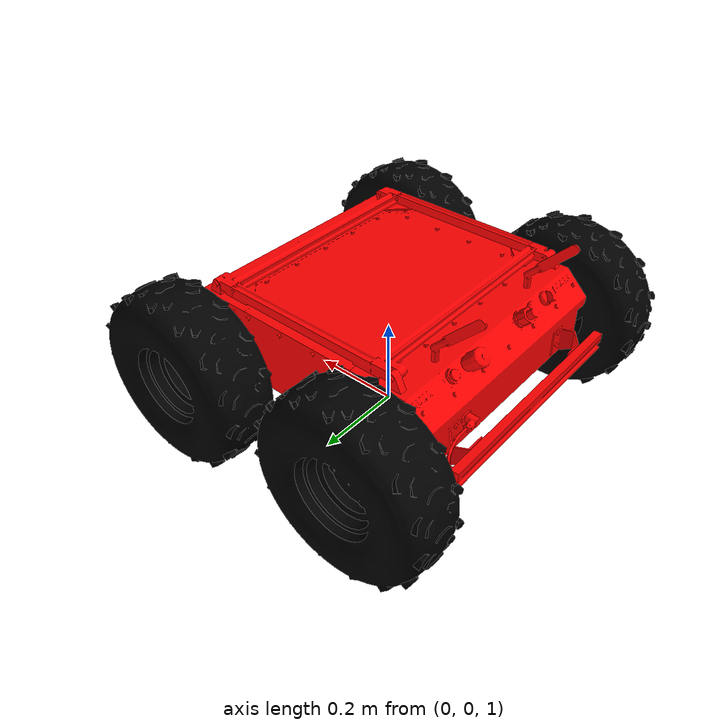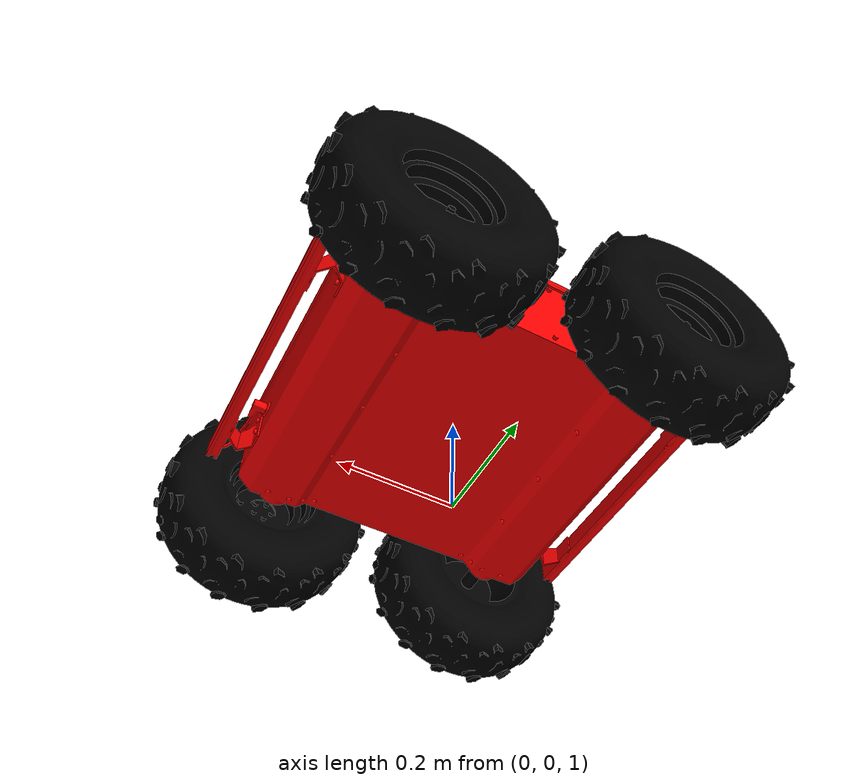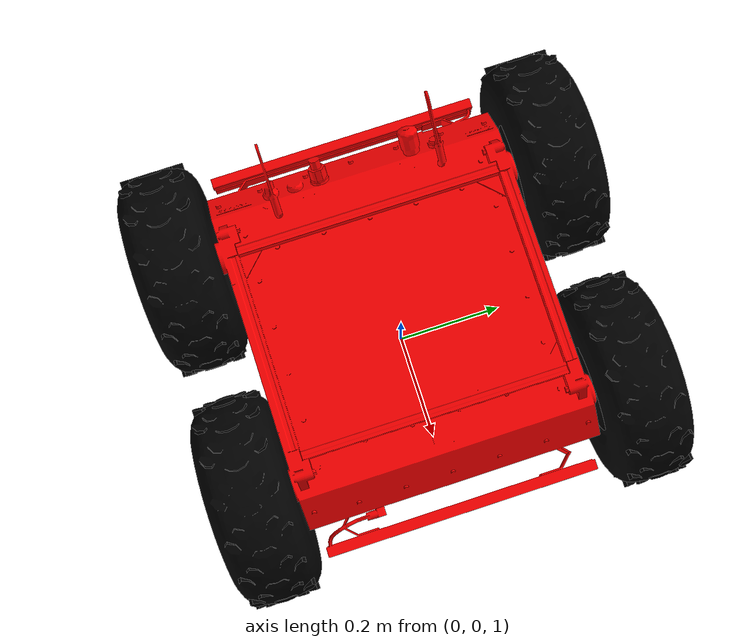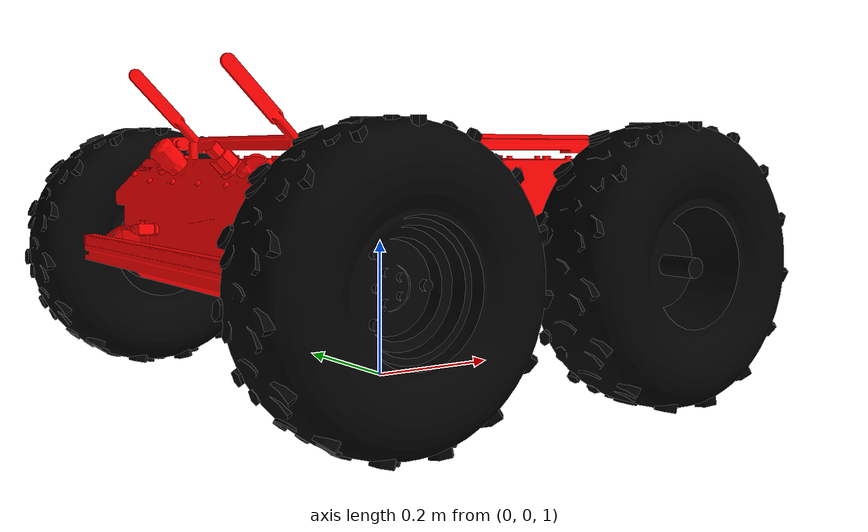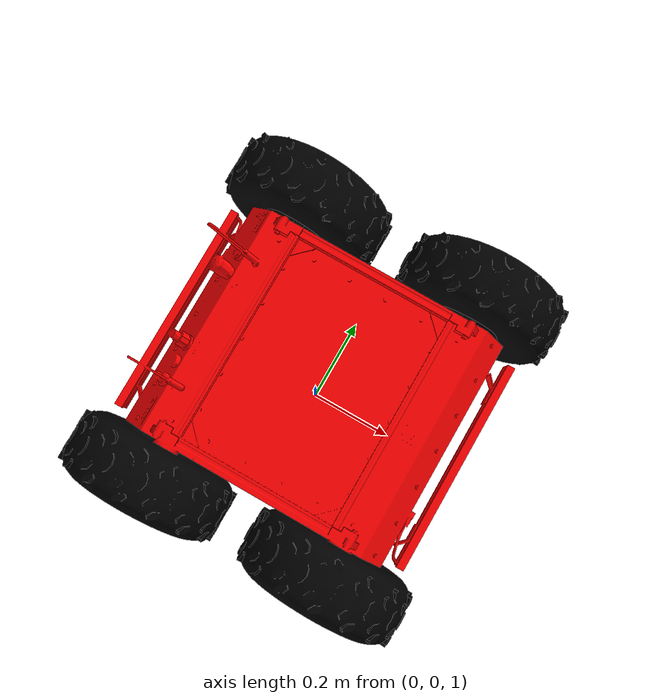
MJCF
<mujoco model="panther">
  <compiler angle="radian" meshdir="assets"/>
  <asset>
    <mesh name="body" file="body.stl"/>
    <mesh name="body_collision" file="body_collision.stl"/>
    <mesh name="fl_wheel" file="fl_wheel.stl"/>
    <mesh name="wheel_collision" file="wheel_collision.stl"/>
    <mesh name="fr_wheel" file="fr_wheel.stl"/>
    <mesh name="rl_wheel" file="rl_wheel.stl"/>
    <mesh name="rr_wheel" file="rr_wheel.stl"/>
  </asset>
  <worldbody>
    <body name="panther" pos= '0 0 1'>
      <geom rgba='1 0 0 1' pos="0 0 0.1825" type="mesh" contype="0" conaffinity="0" group="1" density="0" mesh="body"/>
      <geom rgba='0 0 0 0' pos="0 0 0.1825" type="mesh" mesh="body_collision"/>
      <body name="fl_wheel_link" pos="0.22 0.3485 0.1825">
        <inertial pos="0 0 0" quat="0.707107 0 0 0.707107" mass="3" diaginertia="0.03485 0.02251 0.02251"/>
        <joint name="fl_wheel_joint" pos="0 0 0" axis="0 1 0" actuatorfrcrange="-34.5 34.5" damping="0.01" frictionloss="0.01"/>
        <geom rgba='0 0 0 1' type="mesh" contype="0" conaffinity="0" group="1" density="0" mesh="fl_wheel"/>
        <geom rgba='0 0 0 0' type="mesh" mesh="wheel_collision"/>
      </body>
      <body name="fr_wheel_link" pos="0.22 -0.3485 0.1825">
        <inertial pos="0 0 0" quat="0.707107 0 0 0.707107" mass="3" diaginertia="0.03485 0.02251 0.02251"/>
        <joint name="fr_wheel_joint" pos="0 0 0" axis="0 1 0" actuatorfrcrange="-34.5 34.5" damping="0.01" frictionloss="0.01"/>
        <geom rgba='0 0 0 1' type="mesh" contype="0" conaffinity="0" group="1" density="0" mesh="fr_wheel"/>
        <geom rgba='0 0 0 0' type="mesh" mesh="wheel_collision"/>
      </body>
      <body name="rl_wheel_link" pos="-0.22 0.3485 0.1825">
        <inertial pos="0 0 0" quat="0.707107 0 0 0.707107" mass="3" diaginertia="0.03485 0.02251 0.02251"/>
        <joint name="rl_wheel_joint" pos="0 0 0" axis="0 1 0" actuatorfrcrange="-34.5 34.5" damping="0.01" frictionloss="0.01"/>
        <geom rgba='0 0 0 1' type="mesh" contype="0" conaffinity="0" group="1" density="0" mesh="rl_wheel"/>
        <geom rgba='0 0 0 0' type="mesh" mesh="wheel_collision"/>
      </body>
      <body name="rr_wheel_link" pos="-0.22 -0.3485 0.1825">
        <inertial pos="0 0 0" quat="0.707107 0 0 0.707107" mass="3" diaginertia="0.03485 0.02251 0.02251"/>
        <joint name="rr_wheel_joint" pos="0 0 0" axis="0 1 0" actuatorfrcrange="-34.5 34.5" damping="0.01" frictionloss="0.01"/>
        <geom rgba='0 0 0 1' type="mesh" contype="0" conaffinity="0" group="1" density="0" mesh="rr_wheel"/>
        <geom rgba='0 0 0 0' type="mesh" mesh="wheel_collision"/>
      </body>
    </body>
  </worldbody>

  <tendon>
      <fixed name="linear">
        <joint joint="fl_wheel_joint"  coef="1"/>
        <joint joint="fr_wheel_joint" coef="1"/>
        <joint joint="rl_wheel_joint"   coef="1"/>
        <joint joint="rr_wheel_joint"  coef="1"/>
      </fixed>
      <fixed name="angular">
        <joint joint="fl_wheel_joint"  coef="-1"/>
        <joint joint="fr_wheel_joint" coef="1"/>
        <joint joint="rl_wheel_joint"   coef="-1"/>
        <joint joint="rr_wheel_joint"  coef="1"/>
      </fixed>
    </tendon>

    <actuator>
      <motor name="linear"  tendon="linear"  ctrlrange="-2.5 2.5"/>
      <motor name="angular" tendon="angular" ctrlrange="-10 10"/>
    </actuator>

    <sensor>
      <jointactuatorfrc name="fr_wheel_joint_trq" joint="fr_wheel_joint"/>
      <jointactuatorfrc name="fl_wheel_joint_trq"  joint="fl_wheel_joint"/>
      <jointactuatorfrc name="rr_wheel_joint_trq"  joint="rr_wheel_joint"/>
      <jointactuatorfrc name="rl_wheel_joint_trq"   joint="rl_wheel_joint"/>
      <jointpos         name="fl_wheel_joint_pos"  joint="fl_wheel_joint"  noise="0.01" />
      <jointpos         name="fr_wheel_joint_pos" joint="fr_wheel_joint" noise="0.01" />
      <jointpos         name="rl_wheel_joint_pos"   joint="rl_wheel_joint"   noise="0.01" />
      <jointpos         name="rr_wheel_joint_pos"  joint="rr_wheel_joint"  noise="0.01" />
      <jointvel         name="fr_wheel_joint_vel" joint="fr_wheel_joint" noise="0.01"/>
      <jointvel         name="fl_wheel_joint_vel"  joint="fl_wheel_joint"  noise="0.01"/>
      <jointvel         name="rr_wheel_joint_vel"  joint="rr_wheel_joint"  noise="0.01"/>
      <jointvel         name="rl_wheel_joint_vel"   joint="rl_wheel_joint"   noise="0.01"/>
    </sensor>
</mujoco>
